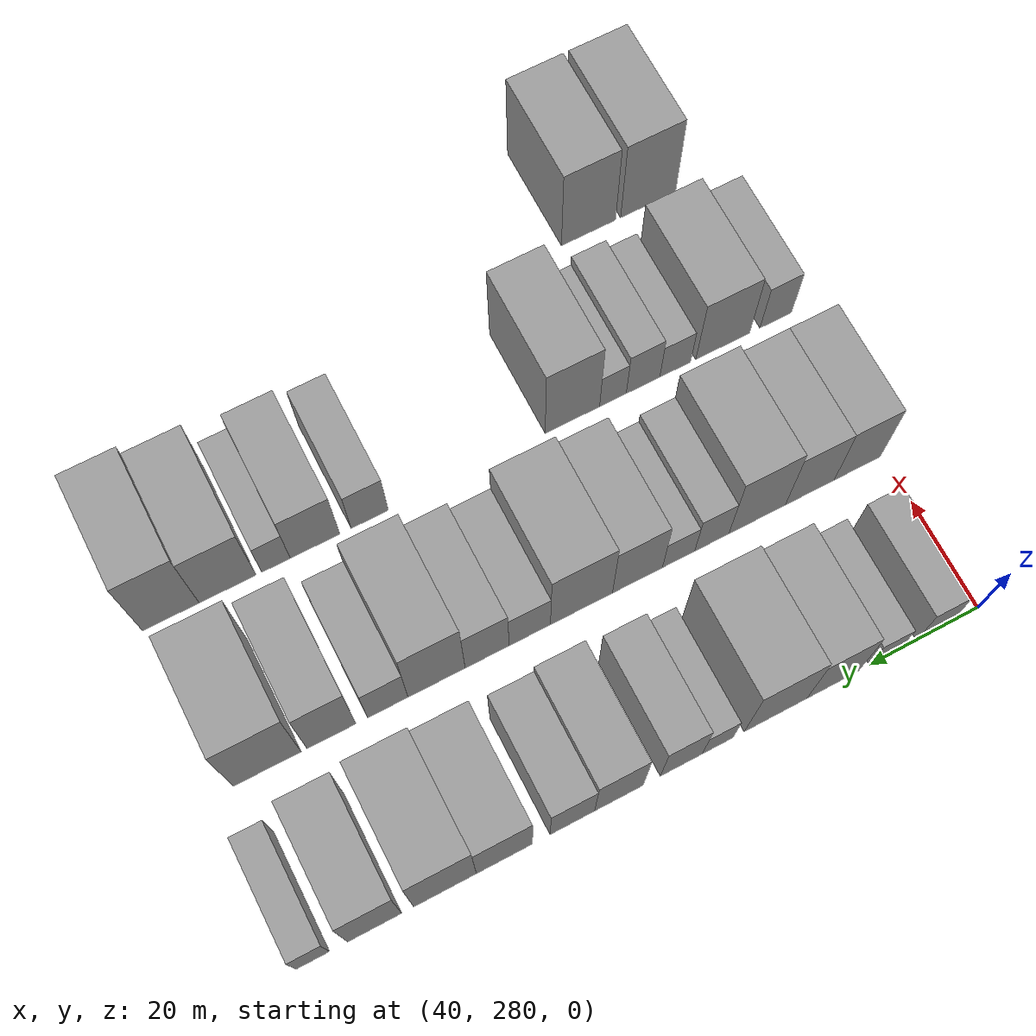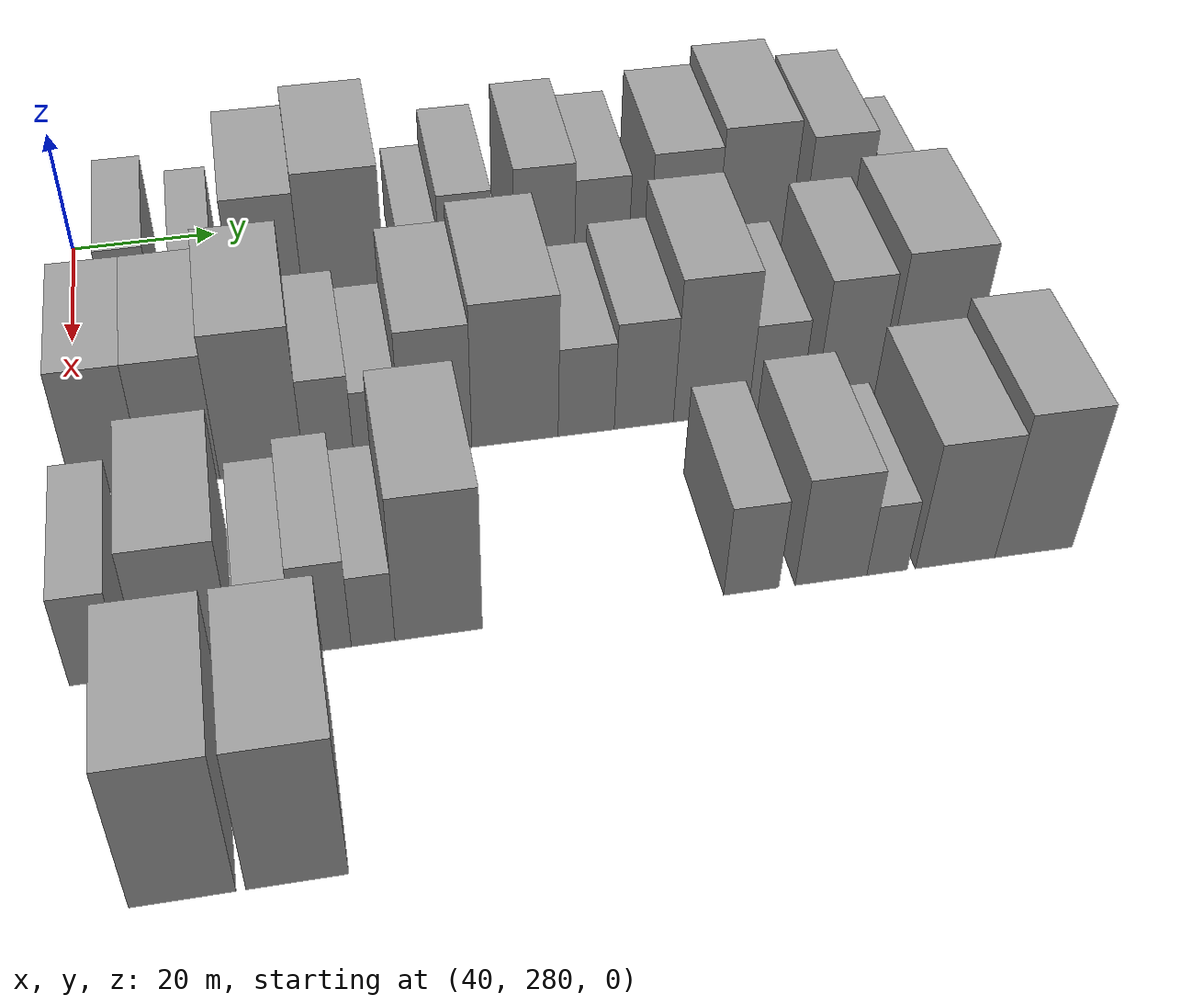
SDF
<sdf version="1.6">
 <world name="default">
  <model name="building_85">
   <static>1</static>
   <pose>50.0000 288.3060 0 0.000000 0.000000 0.000000</pose>
   <link name="link">
    <pose>0 0 7.50 0 0 0</pose>
    <collision name="collision"><geometry><box><size>20.0000 6.3982 15.0000</size></box></geometry></collision>
    <visual name="visual">
     <cast_shadows>0</cast_shadows>
     <geometry><box><size>20.0000 6.3982 15.0000</size></box></geometry>
     <material>
      <script>
       <uri>model://grey_wall/materials/scripts</uri>
       <uri>model://grey_wall/materials/textures</uri>
       <name>vrc/grey_wall</name>
      </script>
     </material>
    </visual>
   </link>
  </model>
  <model name="building_86">
   <static>1</static>
   <pose>50.0000 297.3018 0 0.000000 0.000000 0.000000</pose>
   <link name="link">
    <pose>0 0 6.00 0 0 0</pose>
    <collision name="collision"><geometry><box><size>20.0000 5.5934 12.0000</size></box></geometry></collision>
    <visual name="visual">
     <cast_shadows>0</cast_shadows>
     <geometry><box><size>20.0000 5.5934 12.0000</size></box></geometry>
     <material>
      <script>
       <uri>model://grey_wall/materials/scripts</uri>
       <uri>model://grey_wall/materials/textures</uri>
       <name>vrc/grey_wall</name>
      </script>
     </material>
    </visual>
   </link>
  </model>
  <model name="building_87">
   <static>1</static>
   <pose>50.0000 306.8211 0 0.000000 0.000000 0.000000</pose>
   <link name="link">
    <pose>0 0 10.50 0 0 0</pose>
    <collision name="collision"><geometry><box><size>20.0000 9.4453 21.0000</size></box></geometry></collision>
    <visual name="visual">
     <cast_shadows>0</cast_shadows>
     <geometry><box><size>20.0000 9.4453 21.0000</size></box></geometry>
     <material>
      <script>
       <uri>model://grey_wall/materials/scripts</uri>
       <uri>model://grey_wall/materials/textures</uri>
       <name>vrc/grey_wall</name>
      </script>
     </material>
    </visual>
   </link>
  </model>
  <model name="building_88">
   <static>1</static>
   <pose>50.0000 317.1719 0 0.000000 0.000000 0.000000</pose>
   <link name="link">
    <pose>0 0 12.00 0 0 0</pose>
    <collision name="collision"><geometry><box><size>20.0000 11.2561 24.0000</size></box></geometry></collision>
    <visual name="visual">
     <cast_shadows>0</cast_shadows>
     <geometry><box><size>20.0000 11.2561 24.0000</size></box></geometry>
     <material>
      <script>
       <uri>model://grey_wall/materials/scripts</uri>
       <uri>model://grey_wall/materials/textures</uri>
       <name>vrc/grey_wall</name>
      </script>
     </material>
    </visual>
   </link>
  </model>
  <model name="building_89">
   <static>1</static>
   <pose>50.0000 327.5423 0 0.000000 0.000000 0.000000</pose>
   <link name="link">
    <pose>0 0 6.00 0 0 0</pose>
    <collision name="collision"><geometry><box><size>20.0000 5.4848 12.0000</size></box></geometry></collision>
    <visual name="visual">
     <cast_shadows>0</cast_shadows>
     <geometry><box><size>20.0000 5.4848 12.0000</size></box></geometry>
     <material>
      <script>
       <uri>model://grey_wall/materials/scripts</uri>
       <uri>model://grey_wall/materials/textures</uri>
       <name>vrc/grey_wall</name>
      </script>
     </material>
    </visual>
   </link>
  </model>
  <model name="building_90">
   <static>1</static>
   <pose>50.0000 333.9742 0 0.000000 0.000000 0.000000</pose>
   <link name="link">
    <pose>0 0 9.00 0 0 0</pose>
    <collision name="collision"><geometry><box><size>20.0000 7.3790 18.0000</size></box></geometry></collision>
    <visual name="visual">
     <cast_shadows>0</cast_shadows>
     <geometry><box><size>20.0000 7.3790 18.0000</size></box></geometry>
     <material>
      <script>
       <uri>model://grey_wall/materials/scripts</uri>
       <uri>model://grey_wall/materials/textures</uri>
       <name>vrc/grey_wall</name>
      </script>
     </material>
    </visual>
   </link>
  </model>
  <model name="building_91">
   <static>1</static>
   <pose>50.0000 344.9111 0 0.000000 0.000000 0.000000</pose>
   <link name="link">
    <pose>0 0 10.50 0 0 0</pose>
    <collision name="collision"><geometry><box><size>20.0000 8.4949 21.0000</size></box></geometry></collision>
    <visual name="visual">
     <cast_shadows>0</cast_shadows>
     <geometry><box><size>20.0000 8.4949 21.0000</size></box></geometry>
     <material>
      <script>
       <uri>model://grey_wall/materials/scripts</uri>
       <uri>model://grey_wall/materials/textures</uri>
       <name>vrc/grey_wall</name>
      </script>
     </material>
    </visual>
   </link>
  </model>
  <model name="building_92">
   <static>1</static>
   <pose>50.0000 352.9924 0 0.000000 0.000000 0.000000</pose>
   <link name="link">
    <pose>0 0 9.00 0 0 0</pose>
    <collision name="collision"><geometry><box><size>20.0000 7.6675 18.0000</size></box></geometry></collision>
    <visual name="visual">
     <cast_shadows>0</cast_shadows>
     <geometry><box><size>20.0000 7.6675 18.0000</size></box></geometry>
     <material>
      <script>
       <uri>model://grey_wall/materials/scripts</uri>
       <uri>model://grey_wall/materials/textures</uri>
       <name>vrc/grey_wall</name>
      </script>
     </material>
    </visual>
   </link>
  </model>
  <model name="building_93">
   <static>1</static>
   <pose>50.0000 364.6114 0 0.000000 0.000000 0.000000</pose>
   <link name="link">
    <pose>0 0 10.50 0 0 0</pose>
    <collision name="collision"><geometry><box><size>20.0000 9.5706 21.0000</size></box></geometry></collision>
    <visual name="visual">
     <cast_shadows>0</cast_shadows>
     <geometry><box><size>20.0000 9.5706 21.0000</size></box></geometry>
     <material>
      <script>
       <uri>model://grey_wall/materials/scripts</uri>
       <uri>model://grey_wall/materials/textures</uri>
       <name>vrc/grey_wall</name>
      </script>
     </material>
    </visual>
   </link>
  </model>
  <model name="building_94">
   <static>1</static>
   <pose>50.0000 374.6663 0 0.000000 0.000000 0.000000</pose>
   <link name="link">
    <pose>0 0 12.00 0 0 0</pose>
    <collision name="collision"><geometry><box><size>20.0000 10.5391 24.0000</size></box></geometry></collision>
    <visual name="visual">
     <cast_shadows>0</cast_shadows>
     <geometry><box><size>20.0000 10.5391 24.0000</size></box></geometry>
     <material>
      <script>
       <uri>model://grey_wall/materials/scripts</uri>
       <uri>model://grey_wall/materials/textures</uri>
       <name>vrc/grey_wall</name>
      </script>
     </material>
    </visual>
   </link>
  </model>
  <model name="building_95">
   <static>1</static>
   <pose>50.0000 386.4221 0 0.000000 0.000000 0.000000</pose>
   <link name="link">
    <pose>0 0 10.50 0 0 0</pose>
    <collision name="collision"><geometry><box><size>20.0000 8.9727 21.0000</size></box></geometry></collision>
    <visual name="visual">
     <cast_shadows>0</cast_shadows>
     <geometry><box><size>20.0000 8.9727 21.0000</size></box></geometry>
     <material>
      <script>
       <uri>model://grey_wall/materials/scripts</uri>
       <uri>model://grey_wall/materials/textures</uri>
       <name>vrc/grey_wall</name>
      </script>
     </material>
    </visual>
   </link>
  </model>
  <model name="building_96">
   <static>1</static>
   <pose>50.0000 396.6335 0 0.000000 0.000000 0.000000</pose>
   <link name="link">
    <pose>0 0 6.00 0 0 0</pose>
    <collision name="collision"><geometry><box><size>20.0000 5.4501 12.0000</size></box></geometry></collision>
    <visual name="visual">
     <cast_shadows>0</cast_shadows>
     <geometry><box><size>20.0000 5.4501 12.0000</size></box></geometry>
     <material>
      <script>
       <uri>model://grey_wall/materials/scripts</uri>
       <uri>model://grey_wall/materials/textures</uri>
       <name>vrc/grey_wall</name>
      </script>
     </material>
    </visual>
   </link>
  </model>
  <model name="building_196">
   <static>1</static>
   <pose>79.0000 284.8861 0 0.000000 0.000000 0.000000</pose>
   <link name="link">
    <pose>0 0 10.50 0 0 0</pose>
    <collision name="collision"><geometry><box><size>20.0000 8.7805 21.0000</size></box></geometry></collision>
    <visual name="visual">
     <cast_shadows>0</cast_shadows>
     <geometry><box><size>20.0000 8.7805 21.0000</size></box></geometry>
     <material>
      <script>
       <uri>model://grey_wall/materials/scripts</uri>
       <uri>model://grey_wall/materials/textures</uri>
       <name>vrc/grey_wall</name>
      </script>
     </material>
    </visual>
   </link>
  </model>
  <model name="building_197">
   <static>1</static>
   <pose>79.0000 293.8792 0 0.000000 0.000000 0.000000</pose>
   <link name="link">
    <pose>0 0 10.50 0 0 0</pose>
    <collision name="collision"><geometry><box><size>20.0000 9.2056 21.0000</size></box></geometry></collision>
    <visual name="visual">
     <cast_shadows>0</cast_shadows>
     <geometry><box><size>20.0000 9.2056 21.0000</size></box></geometry>
     <material>
      <script>
       <uri>model://grey_wall/materials/scripts</uri>
       <uri>model://grey_wall/materials/textures</uri>
       <name>vrc/grey_wall</name>
      </script>
     </material>
    </visual>
   </link>
  </model>
  <model name="building_198">
   <static>1</static>
   <pose>79.0000 303.7553 0 0.000000 0.000000 0.000000</pose>
   <link name="link">
    <pose>0 0 12.00 0 0 0</pose>
    <collision name="collision"><geometry><box><size>20.0000 10.5466 24.0000</size></box></geometry></collision>
    <visual name="visual">
     <cast_shadows>0</cast_shadows>
     <geometry><box><size>20.0000 10.5466 24.0000</size></box></geometry>
     <material>
      <script>
       <uri>model://grey_wall/materials/scripts</uri>
       <uri>model://grey_wall/materials/textures</uri>
       <name>vrc/grey_wall</name>
      </script>
     </material>
    </visual>
   </link>
  </model>
  <model name="building_199">
   <static>1</static>
   <pose>79.0000 312.1831 0 0.000000 0.000000 0.000000</pose>
   <link name="link">
    <pose>0 0 7.50 0 0 0</pose>
    <collision name="collision"><geometry><box><size>20.0000 6.3090 15.0000</size></box></geometry></collision>
    <visual name="visual">
     <cast_shadows>0</cast_shadows>
     <geometry><box><size>20.0000 6.3090 15.0000</size></box></geometry>
     <material>
      <script>
       <uri>model://grey_wall/materials/scripts</uri>
       <uri>model://grey_wall/materials/textures</uri>
       <name>vrc/grey_wall</name>
      </script>
     </material>
    </visual>
   </link>
  </model>
  <model name="building_200">
   <static>1</static>
   <pose>79.0000 318.2873 0 0.000000 0.000000 0.000000</pose>
   <link name="link">
    <pose>0 0 6.00 0 0 0</pose>
    <collision name="collision"><geometry><box><size>20.0000 5.8994 12.0000</size></box></geometry></collision>
    <visual name="visual">
     <cast_shadows>0</cast_shadows>
     <geometry><box><size>20.0000 5.8994 12.0000</size></box></geometry>
     <material>
      <script>
       <uri>model://grey_wall/materials/scripts</uri>
       <uri>model://grey_wall/materials/textures</uri>
       <name>vrc/grey_wall</name>
      </script>
     </material>
    </visual>
   </link>
  </model>
  <model name="building_201">
   <static>1</static>
   <pose>79.0000 325.7879 0 0.000000 0.000000 0.000000</pose>
   <link name="link">
    <pose>0 0 10.50 0 0 0</pose>
    <collision name="collision"><geometry><box><size>20.0000 9.1018 21.0000</size></box></geometry></collision>
    <visual name="visual">
     <cast_shadows>0</cast_shadows>
     <geometry><box><size>20.0000 9.1018 21.0000</size></box></geometry>
     <material>
      <script>
       <uri>model://grey_wall/materials/scripts</uri>
       <uri>model://grey_wall/materials/textures</uri>
       <name>vrc/grey_wall</name>
      </script>
     </material>
    </visual>
   </link>
  </model>
  <model name="building_202">
   <static>1</static>
   <pose>79.0000 335.9193 0 0.000000 0.000000 0.000000</pose>
   <link name="link">
    <pose>0 0 12.00 0 0 0</pose>
    <collision name="collision"><geometry><box><size>20.0000 11.1610 24.0000</size></box></geometry></collision>
    <visual name="visual">
     <cast_shadows>0</cast_shadows>
     <geometry><box><size>20.0000 11.1610 24.0000</size></box></geometry>
     <material>
      <script>
       <uri>model://grey_wall/materials/scripts</uri>
       <uri>model://grey_wall/materials/textures</uri>
       <name>vrc/grey_wall</name>
      </script>
     </material>
    </visual>
   </link>
  </model>
  <model name="building_203">
   <static>1</static>
   <pose>79.0000 345.1697 0 0.000000 0.000000 0.000000</pose>
   <link name="link">
    <pose>0 0 7.50 0 0 0</pose>
    <collision name="collision"><geometry><box><size>20.0000 7.3400 15.0000</size></box></geometry></collision>
    <visual name="visual">
     <cast_shadows>0</cast_shadows>
     <geometry><box><size>20.0000 7.3400 15.0000</size></box></geometry>
     <material>
      <script>
       <uri>model://grey_wall/materials/scripts</uri>
       <uri>model://grey_wall/materials/textures</uri>
       <name>vrc/grey_wall</name>
      </script>
     </material>
    </visual>
   </link>
  </model>
  <model name="building_204">
   <static>1</static>
   <pose>79.0000 352.7251 0 0.000000 0.000000 0.000000</pose>
   <link name="link">
    <pose>0 0 9.00 0 0 0</pose>
    <collision name="collision"><geometry><box><size>20.0000 7.7707 18.0000</size></box></geometry></collision>
    <visual name="visual">
     <cast_shadows>0</cast_shadows>
     <geometry><box><size>20.0000 7.7707 18.0000</size></box></geometry>
     <material>
      <script>
       <uri>model://grey_wall/materials/scripts</uri>
       <uri>model://grey_wall/materials/textures</uri>
       <name>vrc/grey_wall</name>
      </script>
     </material>
    </visual>
   </link>
  </model>
  <model name="building_205">
   <static>1</static>
   <pose>79.0000 361.6115 0 0.000000 0.000000 0.000000</pose>
   <link name="link">
    <pose>0 0 12.00 0 0 0</pose>
    <collision name="collision"><geometry><box><size>20.0000 10.0022 24.0000</size></box></geometry></collision>
    <visual name="visual">
     <cast_shadows>0</cast_shadows>
     <geometry><box><size>20.0000 10.0022 24.0000</size></box></geometry>
     <material>
      <script>
       <uri>model://grey_wall/materials/scripts</uri>
       <uri>model://grey_wall/materials/textures</uri>
       <name>vrc/grey_wall</name>
      </script>
     </material>
    </visual>
   </link>
  </model>
  <model name="building_206">
   <static>1</static>
   <pose>79.0000 370.1046 0 0.000000 0.000000 0.000000</pose>
   <link name="link">
    <pose>0 0 7.50 0 0 0</pose>
    <collision name="collision"><geometry><box><size>20.0000 6.9839 15.0000</size></box></geometry></collision>
    <visual name="visual">
     <cast_shadows>0</cast_shadows>
     <geometry><box><size>20.0000 6.9839 15.0000</size></box></geometry>
     <material>
      <script>
       <uri>model://grey_wall/materials/scripts</uri>
       <uri>model://grey_wall/materials/textures</uri>
       <name>vrc/grey_wall</name>
      </script>
     </material>
    </visual>
   </link>
  </model>
  <model name="building_207">
   <static>1</static>
   <pose>79.0000 379.7966 0 0.000000 0.000000 0.000000</pose>
   <link name="link">
    <pose>0 0 10.50 0 0 0</pose>
    <collision name="collision"><geometry><box><size>20.0000 8.4002 21.0000</size></box></geometry></collision>
    <visual name="visual">
     <cast_shadows>0</cast_shadows>
     <geometry><box><size>20.0000 8.4002 21.0000</size></box></geometry>
     <material>
      <script>
       <uri>model://grey_wall/materials/scripts</uri>
       <uri>model://grey_wall/materials/textures</uri>
       <name>vrc/grey_wall</name>
      </script>
     </material>
    </visual>
   </link>
  </model>
  <model name="building_208">
   <static>1</static>
   <pose>79.0000 390.7366 0 0.000000 0.000000 0.000000</pose>
   <link name="link">
    <pose>0 0 12.00 0 0 0</pose>
    <collision name="collision"><geometry><box><size>20.0000 11.4799 24.0000</size></box></geometry></collision>
    <visual name="visual">
     <cast_shadows>0</cast_shadows>
     <geometry><box><size>20.0000 11.4799 24.0000</size></box></geometry>
     <material>
      <script>
       <uri>model://grey_wall/materials/scripts</uri>
       <uri>model://grey_wall/materials/textures</uri>
       <name>vrc/grey_wall</name>
      </script>
     </material>
    </visual>
   </link>
  </model>
  <model name="building_305">
   <static>1</static>
   <pose>108.0000 283.3762 0 0.000000 0.000000 0.000000</pose>
   <link name="link">
    <pose>0 0 7.50 0 0 0</pose>
    <collision name="collision"><geometry><box><size>20.0000 6.1407 15.0000</size></box></geometry></collision>
    <visual name="visual">
     <cast_shadows>0</cast_shadows>
     <geometry><box><size>20.0000 6.1407 15.0000</size></box></geometry>
     <material>
      <script>
       <uri>model://grey_wall/materials/scripts</uri>
       <uri>model://grey_wall/materials/textures</uri>
       <name>vrc/grey_wall</name>
      </script>
     </material>
    </visual>
   </link>
  </model>
  <model name="building_306">
   <static>1</static>
   <pose>108.0000 293.6307 0 0.000000 0.000000 0.000000</pose>
   <link name="link">
    <pose>0 0 10.50 0 0 0</pose>
    <collision name="collision"><geometry><box><size>20.0000 10.3681 21.0000</size></box></geometry></collision>
    <visual name="visual">
     <cast_shadows>0</cast_shadows>
     <geometry><box><size>20.0000 10.3681 21.0000</size></box></geometry>
     <material>
      <script>
       <uri>model://grey_wall/materials/scripts</uri>
       <uri>model://grey_wall/materials/textures</uri>
       <name>vrc/grey_wall</name>
      </script>
     </material>
    </visual>
   </link>
  </model>
  <model name="building_307">
   <static>1</static>
   <pose>108.0000 302.7486 0 0.000000 0.000000 0.000000</pose>
   <link name="link">
    <pose>0 0 6.00 0 0 0</pose>
    <collision name="collision"><geometry><box><size>20.0000 5.8677 12.0000</size></box></geometry></collision>
    <visual name="visual">
     <cast_shadows>0</cast_shadows>
     <geometry><box><size>20.0000 5.8677 12.0000</size></box></geometry>
     <material>
      <script>
       <uri>model://grey_wall/materials/scripts</uri>
       <uri>model://grey_wall/materials/textures</uri>
       <name>vrc/grey_wall</name>
      </script>
     </material>
    </visual>
   </link>
  </model>
  <model name="building_308">
   <static>1</static>
   <pose>108.0000 308.8522 0 0.000000 0.000000 0.000000</pose>
   <link name="link">
    <pose>0 0 7.50 0 0 0</pose>
    <collision name="collision"><geometry><box><size>20.0000 6.3395 15.0000</size></box></geometry></collision>
    <visual name="visual">
     <cast_shadows>0</cast_shadows>
     <geometry><box><size>20.0000 6.3395 15.0000</size></box></geometry>
     <material>
      <script>
       <uri>model://grey_wall/materials/scripts</uri>
       <uri>model://grey_wall/materials/textures</uri>
       <name>vrc/grey_wall</name>
      </script>
     </material>
    </visual>
   </link>
  </model>
  <model name="building_309">
   <static>1</static>
   <pose>108.0000 314.5293 0 0.000000 0.000000 0.000000</pose>
   <link name="link">
    <pose>0 0 6.00 0 0 0</pose>
    <collision name="collision"><geometry><box><size>20.0000 5.0147 12.0000</size></box></geometry></collision>
    <visual name="visual">
     <cast_shadows>0</cast_shadows>
     <geometry><box><size>20.0000 5.0147 12.0000</size></box></geometry>
     <material>
      <script>
       <uri>model://grey_wall/materials/scripts</uri>
       <uri>model://grey_wall/materials/textures</uri>
       <name>vrc/grey_wall</name>
      </script>
     </material>
    </visual>
   </link>
  </model>
  <model name="building_310">
   <static>1</static>
   <pose>108.0000 322.1124 0 0.000000 0.000000 0.000000</pose>
   <link name="link">
    <pose>0 0 12.00 0 0 0</pose>
    <collision name="collision"><geometry><box><size>20.0000 10.1515 24.0000</size></box></geometry></collision>
    <visual name="visual">
     <cast_shadows>0</cast_shadows>
     <geometry><box><size>20.0000 10.1515 24.0000</size></box></geometry>
     <material>
      <script>
       <uri>model://grey_wall/materials/scripts</uri>
       <uri>model://grey_wall/materials/textures</uri>
       <name>vrc/grey_wall</name>
      </script>
     </material>
    </visual>
   </link>
  </model>
  <model name="building_311">
   <static>1</static>
   <pose>108.0000 359.2043 0 0.000000 0.000000 0.000000</pose>
   <link name="link">
    <pose>0 0 7.50 0 0 0</pose>
    <collision name="collision"><geometry><box><size>20.0000 6.6774 15.0000</size></box></geometry></collision>
    <visual name="visual">
     <cast_shadows>0</cast_shadows>
     <geometry><box><size>20.0000 6.6774 15.0000</size></box></geometry>
     <material>
      <script>
       <uri>model://grey_wall/materials/scripts</uri>
       <uri>model://grey_wall/materials/textures</uri>
       <name>vrc/grey_wall</name>
      </script>
     </material>
    </visual>
   </link>
  </model>
  <model name="building_312">
   <static>1</static>
   <pose>108.0000 368.9451 0 0.000000 0.000000 0.000000</pose>
   <link name="link">
    <pose>0 0 9.00 0 0 0</pose>
    <collision name="collision"><geometry><box><size>20.0000 8.8042 18.0000</size></box></geometry></collision>
    <visual name="visual">
     <cast_shadows>0</cast_shadows>
     <geometry><box><size>20.0000 8.8042 18.0000</size></box></geometry>
     <material>
      <script>
       <uri>model://grey_wall/materials/scripts</uri>
       <uri>model://grey_wall/materials/textures</uri>
       <name>vrc/grey_wall</name>
      </script>
     </material>
    </visual>
   </link>
  </model>
  <model name="building_313">
   <static>1</static>
   <pose>108.0000 375.8546 0 0.000000 0.000000 0.000000</pose>
   <link name="link">
    <pose>0 0 6.00 0 0 0</pose>
    <collision name="collision"><geometry><box><size>20.0000 5.0149 12.0000</size></box></geometry></collision>
    <visual name="visual">
     <cast_shadows>0</cast_shadows>
     <geometry><box><size>20.0000 5.0149 12.0000</size></box></geometry>
     <material>
      <script>
       <uri>model://grey_wall/materials/scripts</uri>
       <uri>model://grey_wall/materials/textures</uri>
       <name>vrc/grey_wall</name>
      </script>
     </material>
    </visual>
   </link>
  </model>
  <model name="building_314">
   <static>1</static>
   <pose>108.0000 384.3330 0 0.000000 0.000000 0.000000</pose>
   <link name="link">
    <pose>0 0 10.50 0 0 0</pose>
    <collision name="collision"><geometry><box><size>20.0000 9.9418 21.0000</size></box></geometry></collision>
    <visual name="visual">
     <cast_shadows>0</cast_shadows>
     <geometry><box><size>20.0000 9.9418 21.0000</size></box></geometry>
     <material>
      <script>
       <uri>model://grey_wall/materials/scripts</uri>
       <uri>model://grey_wall/materials/textures</uri>
       <name>vrc/grey_wall</name>
      </script>
     </material>
    </visual>
   </link>
  </model>
  <model name="building_315">
   <static>1</static>
   <pose>108.0000 394.2015 0 0.000000 0.000000 0.000000</pose>
   <link name="link">
    <pose>0 0 12.00 0 0 0</pose>
    <collision name="collision"><geometry><box><size>20.0000 9.7951 24.0000</size></box></geometry></collision>
    <visual name="visual">
     <cast_shadows>0</cast_shadows>
     <geometry><box><size>20.0000 9.7951 24.0000</size></box></geometry>
     <material>
      <script>
       <uri>model://grey_wall/materials/scripts</uri>
       <uri>model://grey_wall/materials/textures</uri>
       <name>vrc/grey_wall</name>
      </script>
     </material>
    </visual>
   </link>
  </model>
  <model name="building_423">
   <static>1</static>
   <pose>137.0000 291.9061 0 0.000000 0.000000 0.000000</pose>
   <link name="link">
    <pose>0 0 12.00 0 0 0</pose>
    <collision name="collision"><geometry><box><size>20.0000 10.7993 24.0000</size></box></geometry></collision>
    <visual name="visual">
     <cast_shadows>0</cast_shadows>
     <geometry><box><size>20.0000 10.7993 24.0000</size></box></geometry>
     <material>
      <script>
       <uri>model://grey_wall/materials/scripts</uri>
       <uri>model://grey_wall/materials/textures</uri>
       <name>vrc/grey_wall</name>
      </script>
     </material>
    </visual>
   </link>
  </model>
  <model name="building_424">
   <static>1</static>
   <pose>137.0000 303.5620 0 0.000000 0.000000 0.000000</pose>
   <link name="link">
    <pose>0 0 12.00 0 0 0</pose>
    <collision name="collision"><geometry><box><size>20.0000 10.5126 24.0000</size></box></geometry></collision>
    <visual name="visual">
     <cast_shadows>0</cast_shadows>
     <geometry><box><size>20.0000 10.5126 24.0000</size></box></geometry>
     <material>
      <script>
       <uri>model://grey_wall/materials/scripts</uri>
       <uri>model://grey_wall/materials/textures</uri>
       <name>vrc/grey_wall</name>
      </script>
     </material>
    </visual>
   </link>
  </model>
 </world>
</sdf>
